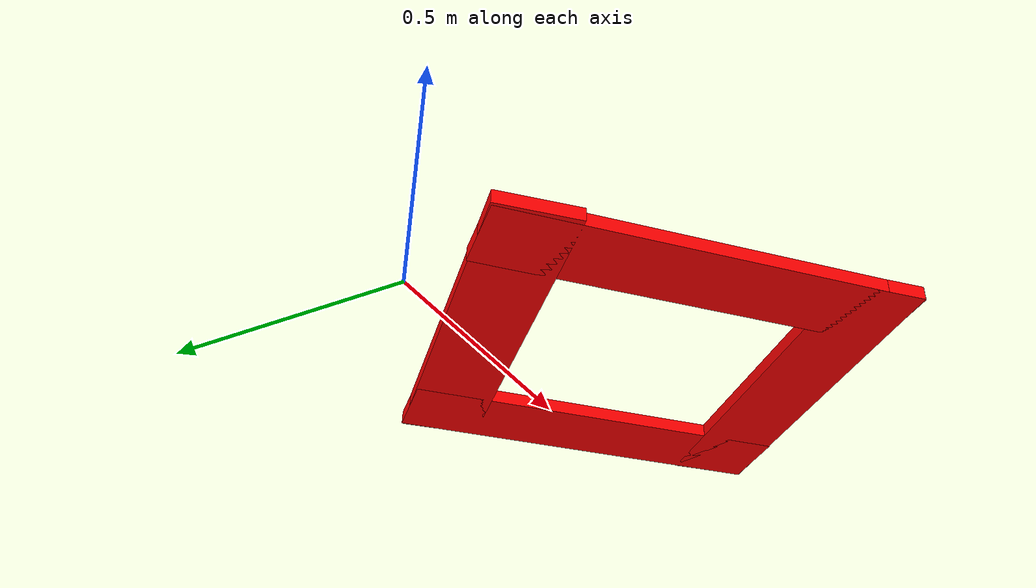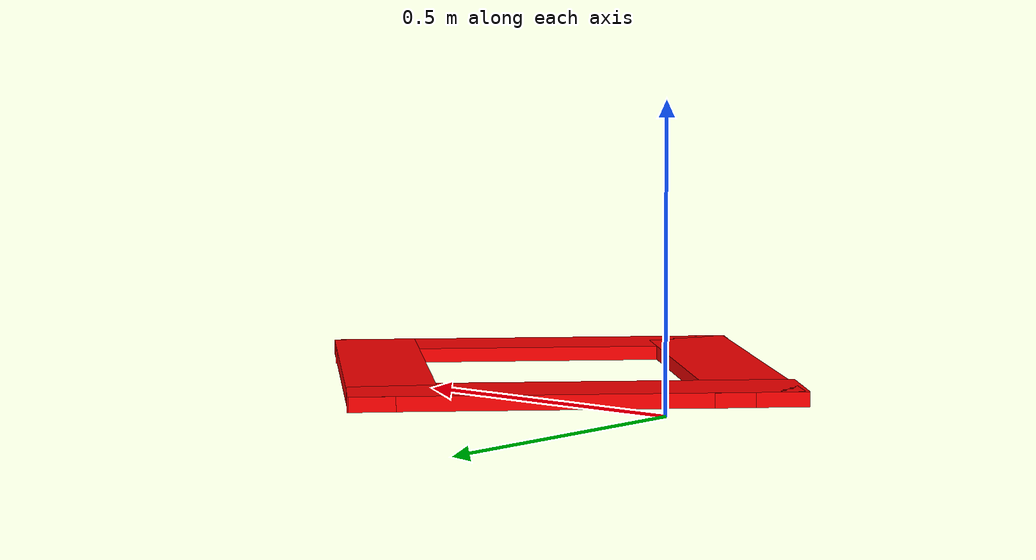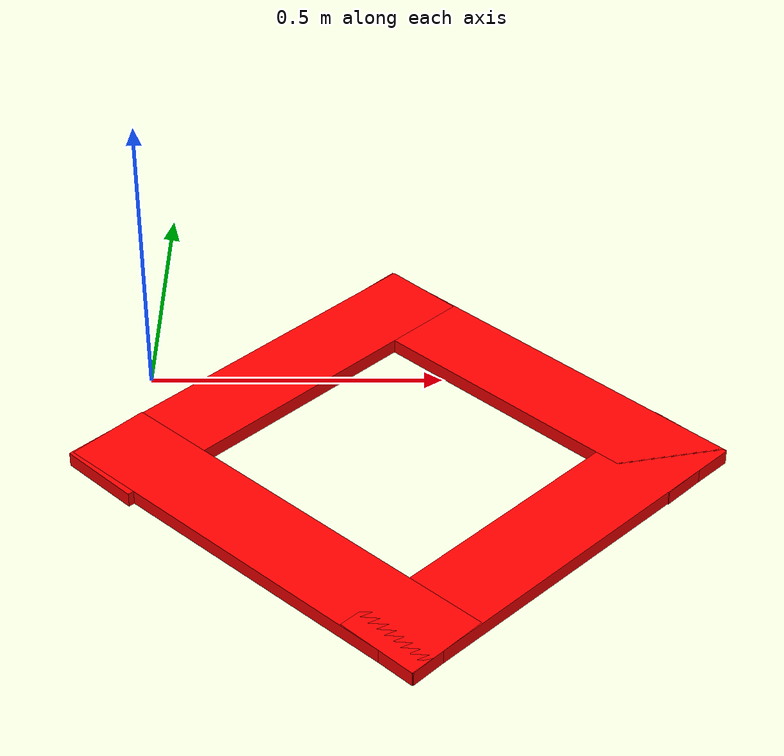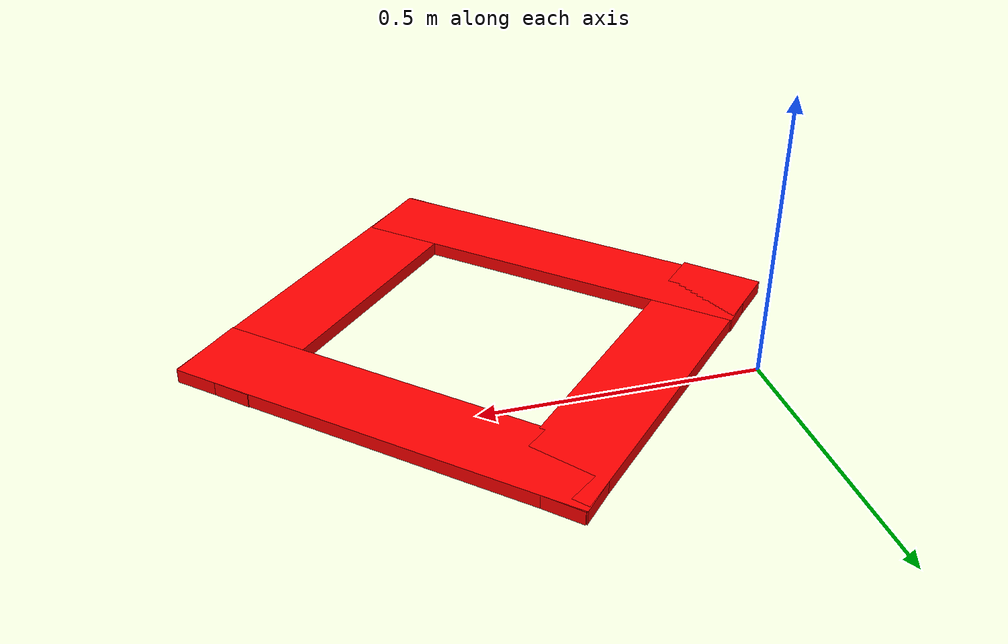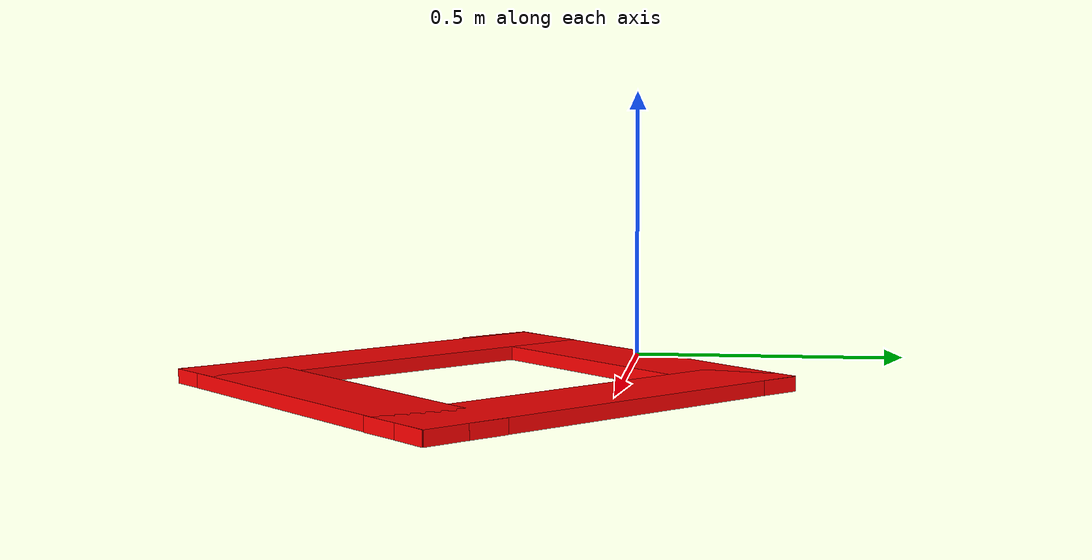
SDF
<?xml version='1.0'?>
<sdf version='1.7'>
  <model name='Drop_zone'>
    <link name='Wall_0'>
      <pose>0.20446 -0.023502 0 0 -0 0.784218</pose>
      <self_collide>0</self_collide>
      <enable_wind>0</enable_wind>
      <kinematic>0</kinematic>
      <gravity>1</gravity>
      <inertial>
        <mass>1</mass>
        <pose>0 0 0 0 -0 0</pose>
        <inertia>
          <ixx>1</ixx>
          <ixy>0</ixy>
          <ixz>0</ixz>
          <iyy>1</iyy>
          <iyz>0</iyz>
          <izz>1</izz>
        </inertia>
      </inertial>
      <visual name='Wall_0_Visual'>
        <pose>0 0 0.0125 0 -0 0</pose>
        <geometry>
          <box>
            <size>0.74892 0.15 0.025</size>
          </box>
        </geometry>
        <material>
          <script>
            <uri>file://media/materials/scripts/gazebo.material</uri>
            <name>Gazebo/Grey</name>
          </script>
          <ambient>1 0 0 1</ambient>
          <shader type='pixel'>
            <normal_map>__default__</normal_map>
          </shader>
          <diffuse>1 0 0 1</diffuse>
          <specular>1 0 0 1</specular>
          <emissive>1 0 0 1</emissive>
        </material>
        <meta>
          <layer>0</layer>
        </meta>
        <transparency>0</transparency>
        <cast_shadows>1</cast_shadows>
      </visual>
      <collision name='Wall_0_Collision'>
        <laser_retro>0</laser_retro>
        <max_contacts>10</max_contacts>
        <pose>0 0 0.0125 0 -0 0</pose>
        <geometry>
          <box>
            <size>0.74892 0.15 0.025</size>
          </box>
        </geometry>
        <surface>
          <friction>
            <ode>
              <mu>1</mu>
              <mu2>1</mu2>
              <fdir1>0 0 0</fdir1>
              <slip1>0</slip1>
              <slip2>0</slip2>
            </ode>
            <torsional>
              <coefficient>1</coefficient>
              <patch_radius>0</patch_radius>
              <surface_radius>0</surface_radius>
              <use_patch_radius>1</use_patch_radius>
              <ode>
                <slip>0</slip>
              </ode>
            </torsional>
          </friction>
          <bounce>
            <restitution_coefficient>0</restitution_coefficient>
            <threshold>1e+06</threshold>
          </bounce>
          <contact>
            <collide_without_contact>0</collide_without_contact>
            <collide_without_contact_bitmask>1</collide_without_contact_bitmask>
            <collide_bitmask>1</collide_bitmask>
            <ode>
              <soft_cfm>0</soft_cfm>
              <soft_erp>0.2</soft_erp>
              <kp>1e+13</kp>
              <kd>1</kd>
              <max_vel>0.01</max_vel>
              <min_depth>0</min_depth>
            </ode>
            <bullet>
              <split_impulse>1</split_impulse>
              <split_impulse_penetration_threshold>-0.01</split_impulse_penetration_threshold>
              <soft_cfm>0</soft_cfm>
              <soft_erp>0.2</soft_erp>
              <kp>1e+13</kp>
              <kd>1</kd>
            </bullet>
          </contact>
        </surface>
      </collision>
    </link>
    <link name='Wall_1'>
      <pose>0.63646 -0.020502 0 0 0 -0.758567</pose>
      <self_collide>0</self_collide>
      <enable_wind>0</enable_wind>
      <kinematic>0</kinematic>
      <gravity>1</gravity>
      <inertial>
        <mass>1</mass>
        <pose>0 0 0 0 -0 0</pose>
        <inertia>
          <ixx>1</ixx>
          <ixy>0</ixy>
          <ixz>0</ixz>
          <iyy>1</iyy>
          <iyz>0</iyz>
          <izz>1</izz>
        </inertia>
      </inertial>
      <visual name='Wall_1_Visual'>
        <pose>0 0 0.0125 0 -0 0</pose>
        <geometry>
          <box>
            <size>0.756355 0.15 0.025</size>
          </box>
        </geometry>
        <material>
          <script>
            <uri>file://media/materials/scripts/gazebo.material</uri>
            <name>Gazebo/Grey</name>
          </script>
          <ambient>1 0 0 1</ambient>
          <shader type='pixel'>
            <normal_map>__default__</normal_map>
          </shader>
          <diffuse>1 0 0 1</diffuse>
          <specular>1 0 0 1</specular>
          <emissive>1 0 0 1</emissive>
        </material>
        <meta>
          <layer>0</layer>
        </meta>
        <transparency>0</transparency>
        <cast_shadows>1</cast_shadows>
      </visual>
      <collision name='Wall_1_Collision'>
        <laser_retro>0</laser_retro>
        <max_contacts>10</max_contacts>
        <pose>0 0 0.0125 0 -0 0</pose>
        <geometry>
          <box>
            <size>0.756355 0.15 0.025</size>
          </box>
        </geometry>
        <surface>
          <friction>
            <ode>
              <mu>1</mu>
              <mu2>1</mu2>
              <fdir1>0 0 0</fdir1>
              <slip1>0</slip1>
              <slip2>0</slip2>
            </ode>
            <torsional>
              <coefficient>1</coefficient>
              <patch_radius>0</patch_radius>
              <surface_radius>0</surface_radius>
              <use_patch_radius>1</use_patch_radius>
              <ode>
                <slip>0</slip>
              </ode>
            </torsional>
          </friction>
          <bounce>
            <restitution_coefficient>0</restitution_coefficient>
            <threshold>1e+06</threshold>
          </bounce>
          <contact>
            <collide_without_contact>0</collide_without_contact>
            <collide_without_contact_bitmask>1</collide_without_contact_bitmask>
            <collide_bitmask>1</collide_bitmask>
            <ode>
              <soft_cfm>0</soft_cfm>
              <soft_erp>0.2</soft_erp>
              <kp>1e+13</kp>
              <kd>1</kd>
              <max_vel>0.01</max_vel>
              <min_depth>0</min_depth>
            </ode>
            <bullet>
              <split_impulse>1</split_impulse>
              <split_impulse_penetration_threshold>-0.01</split_impulse_penetration_threshold>
              <soft_cfm>0</soft_cfm>
              <soft_erp>0.2</soft_erp>
              <kp>1e+13</kp>
              <kd>1</kd>
            </bullet>
          </contact>
        </surface>
      </collision>
    </link>
    <link name='Wall_2'>
      <pose>0.65046 -0.438002 0 0 0 -2.34897</pose>
      <self_collide>0</self_collide>
      <enable_wind>0</enable_wind>
      <kinematic>0</kinematic>
      <gravity>1</gravity>
      <inertial>
        <mass>1</mass>
        <pose>0 0 0 0 -0 0</pose>
        <inertia>
          <ixx>1</ixx>
          <ixy>0</ixy>
          <ixz>0</ixz>
          <iyy>1</iyy>
          <iyz>0</iyz>
          <izz>1</izz>
        </inertia>
      </inertial>
      <visual name='Wall_2_Visual'>
        <pose>0 0 0.0125 0 -0 0</pose>
        <geometry>
          <box>
            <size>0.736724 0.15 0.025</size>
          </box>
        </geometry>
        <material>
          <script>
            <uri>file://media/materials/scripts/gazebo.material</uri>
            <name>Gazebo/Grey</name>
          </script>
          <ambient>1 0 0 1</ambient>
          <shader type='pixel'>
            <normal_map>__default__</normal_map>
          </shader>
          <diffuse>1 0 0 1</diffuse>
          <specular>1 0 0 1</specular>
          <emissive>1 0 0 1</emissive>
        </material>
        <meta>
          <layer>0</layer>
        </meta>
        <transparency>0</transparency>
        <cast_shadows>1</cast_shadows>
      </visual>
      <collision name='Wall_2_Collision'>
        <laser_retro>0</laser_retro>
        <max_contacts>10</max_contacts>
        <pose>0 0 0.0125 0 -0 0</pose>
        <geometry>
          <box>
            <size>0.736724 0.15 0.025</size>
          </box>
        </geometry>
        <surface>
          <friction>
            <ode>
              <mu>1</mu>
              <mu2>1</mu2>
              <fdir1>0 0 0</fdir1>
              <slip1>0</slip1>
              <slip2>0</slip2>
            </ode>
            <torsional>
              <coefficient>1</coefficient>
              <patch_radius>0</patch_radius>
              <surface_radius>0</surface_radius>
              <use_patch_radius>1</use_patch_radius>
              <ode>
                <slip>0</slip>
              </ode>
            </torsional>
          </friction>
          <bounce>
            <restitution_coefficient>0</restitution_coefficient>
            <threshold>1e+06</threshold>
          </bounce>
          <contact>
            <collide_without_contact>0</collide_without_contact>
            <collide_without_contact_bitmask>1</collide_without_contact_bitmask>
            <collide_bitmask>1</collide_bitmask>
            <ode>
              <soft_cfm>0</soft_cfm>
              <soft_erp>0.2</soft_erp>
              <kp>1e+13</kp>
              <kd>1</kd>
              <max_vel>0.01</max_vel>
              <min_depth>0</min_depth>
            </ode>
            <bullet>
              <split_impulse>1</split_impulse>
              <split_impulse_penetration_threshold>-0.01</split_impulse_penetration_threshold>
              <soft_cfm>0</soft_cfm>
              <soft_erp>0.2</soft_erp>
              <kp>1e+13</kp>
              <kd>1</kd>
            </bullet>
          </contact>
        </surface>
      </collision>
    </link>
    <link name='Wall_3'>
      <pose>0.22146 -0.438002 0 0 -0 2.38859</pose>
      <self_collide>0</self_collide>
      <enable_wind>0</enable_wind>
      <kinematic>0</kinematic>
      <gravity>1</gravity>
      <inertial>
        <mass>1</mass>
        <pose>0 0 0 0 -0 0</pose>
        <inertia>
          <ixx>1</ixx>
          <ixy>0</ixy>
          <ixz>0</ixz>
          <iyy>1</iyy>
          <iyz>0</iyz>
          <izz>1</izz>
        </inertia>
      </inertial>
      <visual name='Wall_3_Visual'>
        <pose>0 0 0.0125 0 -0 0</pose>
        <geometry>
          <box>
            <size>0.760813 0.15 0.025</size>
          </box>
        </geometry>
        <material>
          <script>
            <uri>file://media/materials/scripts/gazebo.material</uri>
            <name>Gazebo/Grey</name>
          </script>
          <ambient>1 0 0 1</ambient>
          <shader type='pixel'>
            <normal_map>__default__</normal_map>
          </shader>
          <diffuse>1 0 0 1</diffuse>
          <specular>1 0 0 1</specular>
          <emissive>1 0 0 1</emissive>
        </material>
        <meta>
          <layer>0</layer>
        </meta>
        <transparency>0</transparency>
        <cast_shadows>1</cast_shadows>
      </visual>
      <collision name='Wall_3_Collision'>
        <laser_retro>0</laser_retro>
        <max_contacts>10</max_contacts>
        <pose>0 0 0.0125 0 -0 0</pose>
        <geometry>
          <box>
            <size>0.760813 0.15 0.025</size>
          </box>
        </geometry>
        <surface>
          <friction>
            <ode>
              <mu>1</mu>
              <mu2>1</mu2>
              <fdir1>0 0 0</fdir1>
              <slip1>0</slip1>
              <slip2>0</slip2>
            </ode>
            <torsional>
              <coefficient>1</coefficient>
              <patch_radius>0</patch_radius>
              <surface_radius>0</surface_radius>
              <use_patch_radius>1</use_patch_radius>
              <ode>
                <slip>0</slip>
              </ode>
            </torsional>
          </friction>
          <bounce>
            <restitution_coefficient>0</restitution_coefficient>
            <threshold>1e+06</threshold>
          </bounce>
          <contact>
            <collide_without_contact>0</collide_without_contact>
            <collide_without_contact_bitmask>1</collide_without_contact_bitmask>
            <collide_bitmask>1</collide_bitmask>
            <ode>
              <soft_cfm>0</soft_cfm>
              <soft_erp>0.2</soft_erp>
              <kp>1e+13</kp>
              <kd>1</kd>
              <max_vel>0.01</max_vel>
              <min_depth>0</min_depth>
            </ode>
            <bullet>
              <split_impulse>1</split_impulse>
              <split_impulse_penetration_threshold>-0.01</split_impulse_penetration_threshold>
              <soft_cfm>0</soft_cfm>
              <soft_erp>0.2</soft_erp>
              <kp>1e+13</kp>
              <kd>1</kd>
            </bullet>
          </contact>
        </surface>
      </collision>
    </link>
    <static>1</static>
    <allow_auto_disable>1</allow_auto_disable>
  </model>
</sdf>
